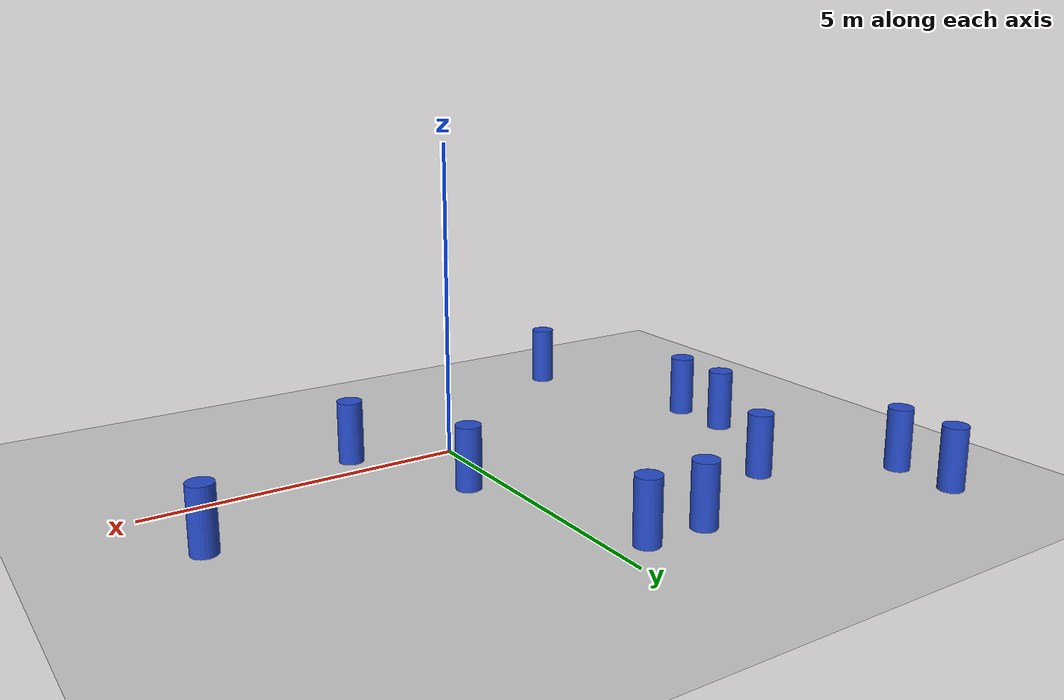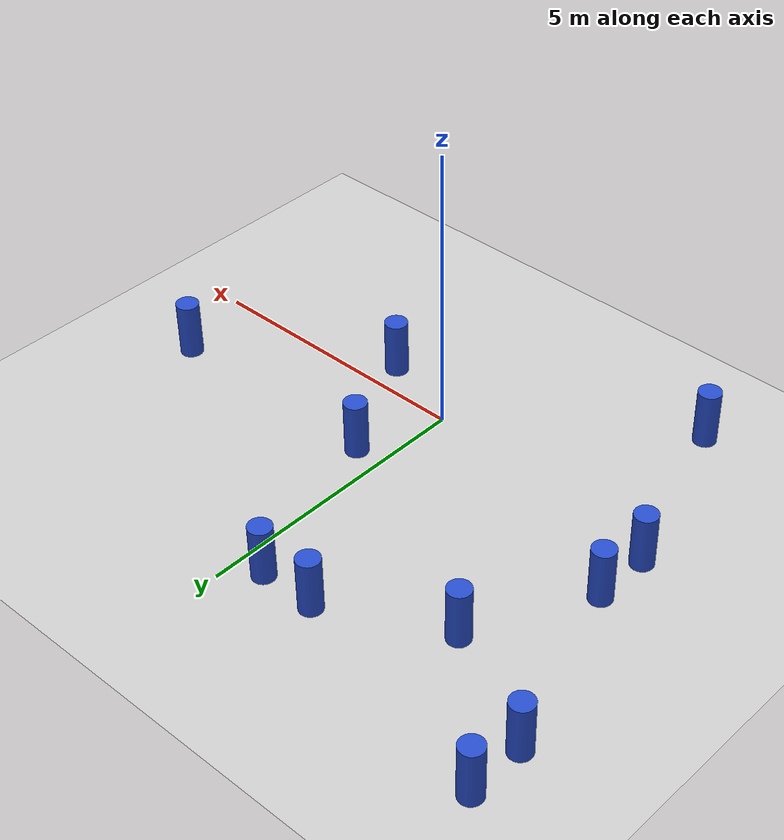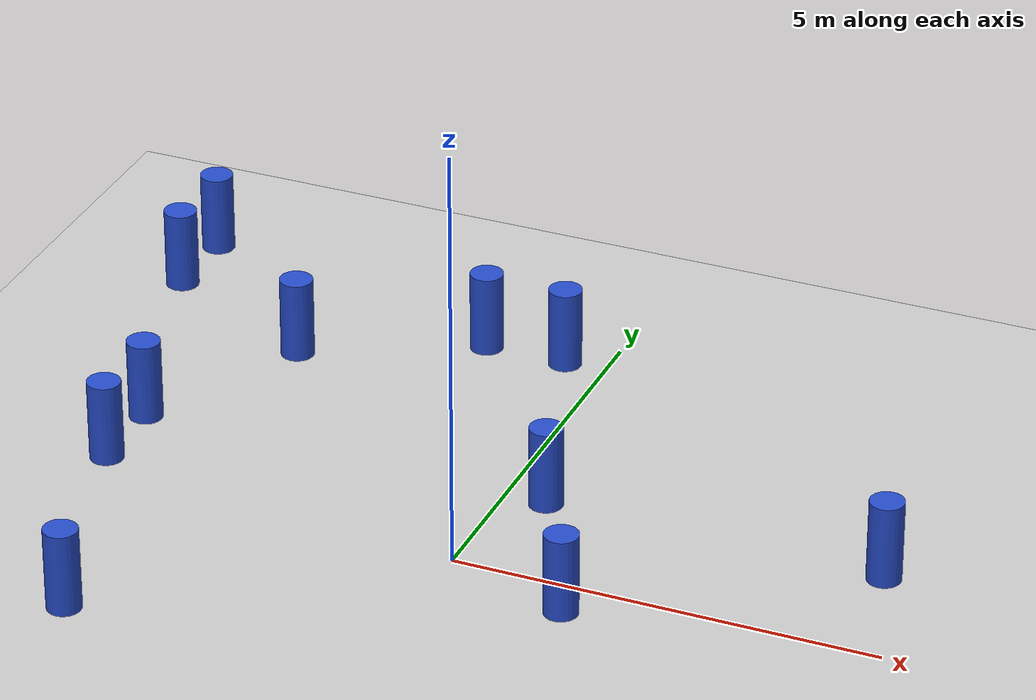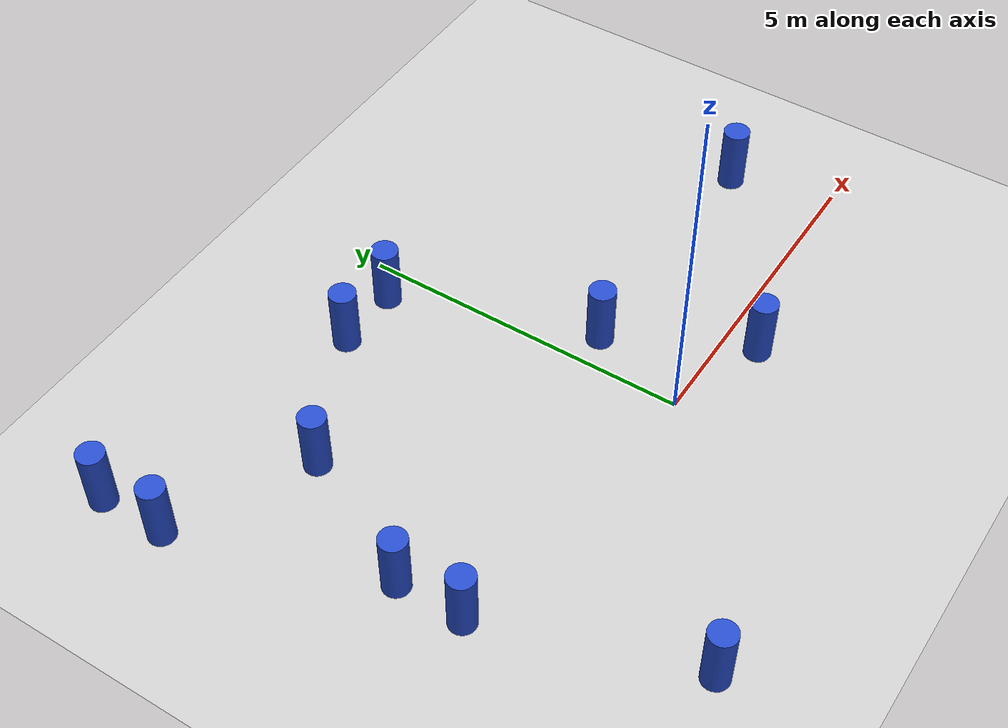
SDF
<sdf version="1.7">
 <world name="default">
  <model name="ground_plane">
   <static>1</static>
   <link name="link">
    <collision name="collision">
     <geometry><plane><normal>0 0 1</normal><size>100 100</size></plane></geometry>
     <surface>
      <contact><collide_bitmask>65535</collide_bitmask></contact>
      <friction><ode><mu>100</mu><mu2>50</mu2></ode></friction>
     </surface>
    </collision>
    <visual name="visual">
     <cast_shadows>0</cast_shadows>
     <geometry><plane><normal>0 0 1</normal><size>100 100</size></plane></geometry>
     <material>
      <script><uri>file://media/materials/scripts/gazebo.material</uri><name>Gazebo/Grey</name></script>
     </material>
    </visual>
   </link>
  </model>
  <model name="20x100cm_cylinder_clone_2">
   <link name="link">
    <inertial>
     <mass>1</mass>
     <inertia><ixx>0.145833</ixx><ixy>0</ixy><ixz>0</ixz><iyy>0.145833</iyy><iyz>0</iyz><izz>0.125</izz></inertia>
    </inertial>
    <visual name="visual">
     <geometry><cylinder><radius>0.2</radius><length>1</length></cylinder></geometry>
     <material>
      <script><name>Gazebo/Blue</name><uri>file://media/materials/scripts/gazebo.material</uri></script>
      <shader type="pixel"><normal_map>__default__</normal_map></shader>
      <ambient>0.3 0.3 0.3 1</ambient>
      <diffuse>0.7 0.7 0.7 1</diffuse>
      <specular>0.01 0.01 0.01 1</specular>
      <emissive>0 0 0 1</emissive>
     </material>
    </visual>
    <collision name="collision">
     <geometry><cylinder><radius>0.2</radius><length>1</length></cylinder></geometry>
     <surface>
      <friction>
       <ode><mu>1</mu><mu2>1</mu2><fdir1>0 0 0</fdir1><slip1>0</slip1><slip2>0</slip2></ode>
       <torsional>
        <coefficient>1</coefficient>
        <patch_radius>0</patch_radius>
        <surface_radius>0</surface_radius>
        <use_patch_radius>1</use_patch_radius>
        <ode><slip>0</slip></ode>
       </torsional>
      </friction>
      <bounce><restitution_coefficient>0</restitution_coefficient><threshold>1e+06</threshold></bounce>
      <contact>
       <collide_without_contact>0</collide_without_contact>
       <collide_without_contact_bitmask>1</collide_without_contact_bitmask>
       <collide_bitmask>1</collide_bitmask>
       <ode>
        <soft_cfm>0</soft_cfm>
        <soft_erp>0.2</soft_erp>
        <kp>1e+13</kp>
        <kd>1</kd>
        <max_vel>0.01</max_vel>
        <min_depth>0</min_depth>
       </ode>
       <bullet>
        <split_impulse>1</split_impulse>
        <split_impulse_penetration_threshold>-0.01</split_impulse_penetration_threshold>
        <soft_cfm>0</soft_cfm>
        <soft_erp>0.2</soft_erp>
        <kp>1e+13</kp>
        <kd>1</kd>
       </bullet>
      </contact>
     </surface>
    </collision>
   </link>
   <static>0</static>
   <pose>-4.49997 1.50001 0.499991 0 0 -7.7e-05</pose>
  </model>
  <model name="20x100cm_cylinder_clone_3">
   <link name="link">
    <inertial>
     <mass>1</mass>
     <inertia><ixx>0.145833</ixx><ixy>0</ixy><ixz>0</ixz><iyy>0.145833</iyy><iyz>0</iyz><izz>0.125</izz></inertia>
    </inertial>
    <visual name="visual">
     <geometry><cylinder><radius>0.2</radius><length>1</length></cylinder></geometry>
     <material>
      <script><name>Gazebo/Blue</name><uri>file://media/materials/scripts/gazebo.material</uri></script>
      <shader type="pixel"><normal_map>__default__</normal_map></shader>
      <ambient>0.3 0.3 0.3 1</ambient>
      <diffuse>0.7 0.7 0.7 1</diffuse>
      <specular>0.01 0.01 0.01 1</specular>
      <emissive>0 0 0 1</emissive>
     </material>
    </visual>
    <collision name="collision">
     <geometry><cylinder><radius>0.2</radius><length>1</length></cylinder></geometry>
     <surface>
      <friction>
       <ode><mu>1</mu><mu2>1</mu2><fdir1>0 0 0</fdir1><slip1>0</slip1><slip2>0</slip2></ode>
       <torsional>
        <coefficient>1</coefficient>
        <patch_radius>0</patch_radius>
        <surface_radius>0</surface_radius>
        <use_patch_radius>1</use_patch_radius>
        <ode><slip>0</slip></ode>
       </torsional>
      </friction>
      <bounce><restitution_coefficient>0</restitution_coefficient><threshold>1e+06</threshold></bounce>
      <contact>
       <collide_without_contact>0</collide_without_contact>
       <collide_without_contact_bitmask>1</collide_without_contact_bitmask>
       <collide_bitmask>1</collide_bitmask>
       <ode>
        <soft_cfm>0</soft_cfm>
        <soft_erp>0.2</soft_erp>
        <kp>1e+13</kp>
        <kd>1</kd>
        <max_vel>0.01</max_vel>
        <min_depth>0</min_depth>
       </ode>
       <bullet>
        <split_impulse>1</split_impulse>
        <split_impulse_penetration_threshold>-0.01</split_impulse_penetration_threshold>
        <soft_cfm>0</soft_cfm>
        <soft_erp>0.2</soft_erp>
        <kp>1e+13</kp>
        <kd>1</kd>
       </bullet>
      </contact>
     </surface>
    </collision>
   </link>
   <static>0</static>
   <pose>-1.49997 4.50001 0.499991 0 0 -7.7e-05</pose>
  </model>
  <model name="20x100cm_cylinder_clone_4">
   <link name="link">
    <inertial>
     <mass>1</mass>
     <inertia><ixx>0.145833</ixx><ixy>0</ixy><ixz>0</ixz><iyy>0.145833</iyy><iyz>0</iyz><izz>0.125</izz></inertia>
    </inertial>
    <visual name="visual">
     <geometry><cylinder><radius>0.2</radius><length>1</length></cylinder></geometry>
     <material>
      <script><name>Gazebo/Blue</name><uri>file://media/materials/scripts/gazebo.material</uri></script>
      <shader type="pixel"><normal_map>__default__</normal_map></shader>
      <ambient>0.3 0.3 0.3 1</ambient>
      <diffuse>0.7 0.7 0.7 1</diffuse>
      <specular>0.01 0.01 0.01 1</specular>
      <emissive>0 0 0 1</emissive>
     </material>
    </visual>
    <collision name="collision">
     <geometry><cylinder><radius>0.2</radius><length>1</length></cylinder></geometry>
     <surface>
      <friction>
       <ode><mu>1</mu><mu2>1</mu2><fdir1>0 0 0</fdir1><slip1>0</slip1><slip2>0</slip2></ode>
       <torsional>
        <coefficient>1</coefficient>
        <patch_radius>0</patch_radius>
        <surface_radius>0</surface_radius>
        <use_patch_radius>1</use_patch_radius>
        <ode><slip>0</slip></ode>
       </torsional>
      </friction>
      <bounce><restitution_coefficient>0</restitution_coefficient><threshold>1e+06</threshold></bounce>
      <contact>
       <collide_without_contact>0</collide_without_contact>
       <collide_without_contact_bitmask>1</collide_without_contact_bitmask>
       <collide_bitmask>1</collide_bitmask>
       <ode>
        <soft_cfm>0</soft_cfm>
        <soft_erp>0.2</soft_erp>
        <kp>1e+13</kp>
        <kd>1</kd>
        <max_vel>0.01</max_vel>
        <min_depth>0</min_depth>
       </ode>
       <bullet>
        <split_impulse>1</split_impulse>
        <split_impulse_penetration_threshold>-0.01</split_impulse_penetration_threshold>
        <soft_cfm>0</soft_cfm>
        <soft_erp>0.2</soft_erp>
        <kp>1e+13</kp>
        <kd>1</kd>
       </bullet>
      </contact>
     </surface>
    </collision>
   </link>
   <static>0</static>
   <pose>-5.49997 5.50001 0.499991 0 0 -7.7e-05</pose>
  </model>
  <model name="20x100cm_cylinder_clone_5">
   <link name="link">
    <inertial>
     <mass>1</mass>
     <inertia><ixx>0.145833</ixx><ixy>0</ixy><ixz>0</ixz><iyy>0.145833</iyy><iyz>0</iyz><izz>0.125</izz></inertia>
    </inertial>
    <visual name="visual">
     <geometry><cylinder><radius>0.2</radius><length>1</length></cylinder></geometry>
     <material>
      <script><name>Gazebo/Blue</name><uri>file://media/materials/scripts/gazebo.material</uri></script>
      <shader type="pixel"><normal_map>__default__</normal_map></shader>
      <ambient>0.3 0.3 0.3 1</ambient>
      <diffuse>0.7 0.7 0.7 1</diffuse>
      <specular>0.01 0.01 0.01 1</specular>
      <emissive>0 0 0 1</emissive>
     </material>
    </visual>
    <collision name="collision">
     <geometry><cylinder><radius>0.2</radius><length>1</length></cylinder></geometry>
     <surface>
      <friction>
       <ode><mu>1</mu><mu2>1</mu2><fdir1>0 0 0</fdir1><slip1>0</slip1><slip2>0</slip2></ode>
       <torsional>
        <coefficient>1</coefficient>
        <patch_radius>0</patch_radius>
        <surface_radius>0</surface_radius>
        <use_patch_radius>1</use_patch_radius>
        <ode><slip>0</slip></ode>
       </torsional>
      </friction>
      <bounce><restitution_coefficient>0</restitution_coefficient><threshold>1e+06</threshold></bounce>
      <contact>
       <collide_without_contact>0</collide_without_contact>
       <collide_without_contact_bitmask>1</collide_without_contact_bitmask>
       <collide_bitmask>1</collide_bitmask>
       <ode>
        <soft_cfm>0</soft_cfm>
        <soft_erp>0.2</soft_erp>
        <kp>1e+13</kp>
        <kd>1</kd>
        <max_vel>0.01</max_vel>
        <min_depth>0</min_depth>
       </ode>
       <bullet>
        <split_impulse>1</split_impulse>
        <split_impulse_penetration_threshold>-0.01</split_impulse_penetration_threshold>
        <soft_cfm>0</soft_cfm>
        <soft_erp>0.2</soft_erp>
        <kp>1e+13</kp>
        <kd>1</kd>
       </bullet>
      </contact>
     </surface>
    </collision>
   </link>
   <static>0</static>
   <pose>4.50003 1.50001 0.499991 0 0 -7.7e-05</pose>
  </model>
  <model name="20x100cm_cylinder_clone_6">
   <link name="link">
    <inertial>
     <mass>1</mass>
     <inertia><ixx>0.145833</ixx><ixy>0</ixy><ixz>0</ixz><iyy>0.145833</iyy><iyz>0</iyz><izz>0.125</izz></inertia>
    </inertial>
    <visual name="visual">
     <geometry><cylinder><radius>0.2</radius><length>1</length></cylinder></geometry>
     <material>
      <script><name>Gazebo/Blue</name><uri>file://media/materials/scripts/gazebo.material</uri></script>
      <shader type="pixel"><normal_map>__default__</normal_map></shader>
      <ambient>0.3 0.3 0.3 1</ambient>
      <diffuse>0.7 0.7 0.7 1</diffuse>
      <specular>0.01 0.01 0.01 1</specular>
      <emissive>0 0 0 1</emissive>
     </material>
    </visual>
    <collision name="collision">
     <geometry><cylinder><radius>0.2</radius><length>1</length></cylinder></geometry>
     <surface>
      <friction>
       <ode><mu>1</mu><mu2>1</mu2><fdir1>0 0 0</fdir1><slip1>0</slip1><slip2>0</slip2></ode>
       <torsional>
        <coefficient>1</coefficient>
        <patch_radius>0</patch_radius>
        <surface_radius>0</surface_radius>
        <use_patch_radius>1</use_patch_radius>
        <ode><slip>0</slip></ode>
       </torsional>
      </friction>
      <bounce><restitution_coefficient>0</restitution_coefficient><threshold>1e+06</threshold></bounce>
      <contact>
       <collide_without_contact>0</collide_without_contact>
       <collide_without_contact_bitmask>1</collide_without_contact_bitmask>
       <collide_bitmask>1</collide_bitmask>
       <ode>
        <soft_cfm>0</soft_cfm>
        <soft_erp>0.2</soft_erp>
        <kp>1e+13</kp>
        <kd>1</kd>
        <max_vel>0.01</max_vel>
        <min_depth>0</min_depth>
       </ode>
       <bullet>
        <split_impulse>1</split_impulse>
        <split_impulse_penetration_threshold>-0.01</split_impulse_penetration_threshold>
        <soft_cfm>0</soft_cfm>
        <soft_erp>0.2</soft_erp>
        <kp>1e+13</kp>
        <kd>1</kd>
       </bullet>
      </contact>
     </surface>
    </collision>
   </link>
   <static>0</static>
   <pose>-0.499974 4.50001 0.499991 0 0 -7.7e-05</pose>
  </model>
  <model name="20x100cm_cylinder_clone_12">
   <link name="link">
    <inertial>
     <mass>1</mass>
     <inertia><ixx>0.145833</ixx><ixy>0</ixy><ixz>0</ixz><iyy>0.145833</iyy><iyz>0</iyz><izz>0.125</izz></inertia>
    </inertial>
    <visual name="visual">
     <geometry><cylinder><radius>0.2</radius><length>1</length></cylinder></geometry>
     <material>
      <script><name>Gazebo/Blue</name><uri>file://media/materials/scripts/gazebo.material</uri></script>
      <shader type="pixel"><normal_map>__default__</normal_map></shader>
      <ambient>0.3 0.3 0.3 1</ambient>
      <diffuse>0.7 0.7 0.7 1</diffuse>
      <specular>0.01 0.01 0.01 1</specular>
      <emissive>0 0 0 1</emissive>
     </material>
    </visual>
    <collision name="collision">
     <geometry><cylinder><radius>0.2</radius><length>1</length></cylinder></geometry>
     <surface>
      <friction>
       <ode><mu>1</mu><mu2>1</mu2><fdir1>0 0 0</fdir1><slip1>0</slip1><slip2>0</slip2></ode>
       <torsional>
        <coefficient>1</coefficient>
        <patch_radius>0</patch_radius>
        <surface_radius>0</surface_radius>
        <use_patch_radius>1</use_patch_radius>
        <ode><slip>0</slip></ode>
       </torsional>
      </friction>
      <bounce><restitution_coefficient>0</restitution_coefficient><threshold>1e+06</threshold></bounce>
      <contact>
       <collide_without_contact>0</collide_without_contact>
       <collide_without_contact_bitmask>1</collide_without_contact_bitmask>
       <collide_bitmask>1</collide_bitmask>
       <ode>
        <soft_cfm>0</soft_cfm>
        <soft_erp>0.2</soft_erp>
        <kp>1e+13</kp>
        <kd>1</kd>
        <max_vel>0.01</max_vel>
        <min_depth>0</min_depth>
       </ode>
       <bullet>
        <split_impulse>1</split_impulse>
        <split_impulse_penetration_threshold>-0.01</split_impulse_penetration_threshold>
        <soft_cfm>0</soft_cfm>
        <soft_erp>0.2</soft_erp>
        <kp>1e+13</kp>
        <kd>1</kd>
       </bullet>
      </contact>
     </surface>
    </collision>
   </link>
   <static>0</static>
   <pose>-5.49997 4.50001 0.499991 0 0 -7.7e-05</pose>
  </model>
  <model name="20x100cm_cylinder_clone_13">
   <link name="link">
    <inertial>
     <mass>1</mass>
     <inertia><ixx>0.145833</ixx><ixy>0</ixy><ixz>0</ixz><iyy>0.145833</iyy><iyz>0</iyz><izz>0.125</izz></inertia>
    </inertial>
    <visual name="visual">
     <geometry><cylinder><radius>0.2</radius><length>1</length></cylinder></geometry>
     <material>
      <script><name>Gazebo/Blue</name><uri>file://media/materials/scripts/gazebo.material</uri></script>
      <shader type="pixel"><normal_map>__default__</normal_map></shader>
      <ambient>0.3 0.3 0.3 1</ambient>
      <diffuse>0.7 0.7 0.7 1</diffuse>
      <specular>0.01 0.01 0.01 1</specular>
      <emissive>0 0 0 1</emissive>
     </material>
    </visual>
    <collision name="collision">
     <geometry><cylinder><radius>0.2</radius><length>1</length></cylinder></geometry>
     <surface>
      <friction>
       <ode><mu>1</mu><mu2>1</mu2><fdir1>0 0 0</fdir1><slip1>0</slip1><slip2>0</slip2></ode>
       <torsional>
        <coefficient>1</coefficient>
        <patch_radius>0</patch_radius>
        <surface_radius>0</surface_radius>
        <use_patch_radius>1</use_patch_radius>
        <ode><slip>0</slip></ode>
       </torsional>
      </friction>
      <bounce><restitution_coefficient>0</restitution_coefficient><threshold>1e+06</threshold></bounce>
      <contact>
       <collide_without_contact>0</collide_without_contact>
       <collide_without_contact_bitmask>1</collide_without_contact_bitmask>
       <collide_bitmask>1</collide_bitmask>
       <ode>
        <soft_cfm>0</soft_cfm>
        <soft_erp>0.2</soft_erp>
        <kp>1e+13</kp>
        <kd>1</kd>
        <max_vel>0.01</max_vel>
        <min_depth>0</min_depth>
       </ode>
       <bullet>
        <split_impulse>1</split_impulse>
        <split_impulse_penetration_threshold>-0.01</split_impulse_penetration_threshold>
        <soft_cfm>0</soft_cfm>
        <soft_erp>0.2</soft_erp>
        <kp>1e+13</kp>
        <kd>1</kd>
       </bullet>
      </contact>
     </surface>
    </collision>
   </link>
   <static>0</static>
   <pose>0.500026 1.50001 0.499991 0 0 -7.7e-05</pose>
  </model>
  <model name="20x100cm_cylinder_clone_15">
   <link name="link">
    <inertial>
     <mass>1</mass>
     <inertia><ixx>0.145833</ixx><ixy>0</ixy><ixz>0</ixz><iyy>0.145833</iyy><iyz>0</iyz><izz>0.125</izz></inertia>
    </inertial>
    <visual name="visual">
     <geometry><cylinder><radius>0.2</radius><length>1</length></cylinder></geometry>
     <material>
      <script><name>Gazebo/Blue</name><uri>file://media/materials/scripts/gazebo.material</uri></script>
      <shader type="pixel"><normal_map>__default__</normal_map></shader>
      <ambient>0.3 0.3 0.3 1</ambient>
      <diffuse>0.7 0.7 0.7 1</diffuse>
      <specular>0.01 0.01 0.01 1</specular>
      <emissive>0 0 0 1</emissive>
     </material>
    </visual>
    <collision name="collision">
     <geometry><cylinder><radius>0.2</radius><length>1</length></cylinder></geometry>
     <surface>
      <friction>
       <ode><mu>1</mu><mu2>1</mu2><fdir1>0 0 0</fdir1><slip1>0</slip1><slip2>0</slip2></ode>
       <torsional>
        <coefficient>1</coefficient>
        <patch_radius>0</patch_radius>
        <surface_radius>0</surface_radius>
        <use_patch_radius>1</use_patch_radius>
        <ode><slip>0</slip></ode>
       </torsional>
      </friction>
      <bounce><restitution_coefficient>0</restitution_coefficient><threshold>1e+06</threshold></bounce>
      <contact>
       <collide_without_contact>0</collide_without_contact>
       <collide_without_contact_bitmask>1</collide_without_contact_bitmask>
       <collide_bitmask>1</collide_bitmask>
       <ode>
        <soft_cfm>0</soft_cfm>
        <soft_erp>0.2</soft_erp>
        <kp>1e+13</kp>
        <kd>1</kd>
        <max_vel>0.01</max_vel>
        <min_depth>0</min_depth>
       </ode>
       <bullet>
        <split_impulse>1</split_impulse>
        <split_impulse_penetration_threshold>-0.01</split_impulse_penetration_threshold>
        <soft_cfm>0</soft_cfm>
        <soft_erp>0.2</soft_erp>
        <kp>1e+13</kp>
        <kd>1</kd>
       </bullet>
      </contact>
     </surface>
    </collision>
   </link>
   <static>0</static>
   <pose>-3.49997 -2.49999 0.499991 0 0 -7.7e-05</pose>
  </model>
  <model name="20x100cm_cylinder_clone_16">
   <link name="link">
    <inertial>
     <mass>1</mass>
     <inertia><ixx>0.145833</ixx><ixy>0</ixy><ixz>0</ixz><iyy>0.145833</iyy><iyz>0</iyz><izz>0.125</izz></inertia>
    </inertial>
    <visual name="visual">
     <geometry><cylinder><radius>0.2</radius><length>1</length></cylinder></geometry>
     <material>
      <script><name>Gazebo/Blue</name><uri>file://media/materials/scripts/gazebo.material</uri></script>
      <shader type="pixel"><normal_map>__default__</normal_map></shader>
      <ambient>0.3 0.3 0.3 1</ambient>
      <diffuse>0.7 0.7 0.7 1</diffuse>
      <specular>0.01 0.01 0.01 1</specular>
      <emissive>0 0 0 1</emissive>
     </material>
    </visual>
    <collision name="collision">
     <geometry><cylinder><radius>0.2</radius><length>1</length></cylinder></geometry>
     <surface>
      <friction>
       <ode><mu>1</mu><mu2>1</mu2><fdir1>0 0 0</fdir1><slip1>0</slip1><slip2>0</slip2></ode>
       <torsional>
        <coefficient>1</coefficient>
        <patch_radius>0</patch_radius>
        <surface_radius>0</surface_radius>
        <use_patch_radius>1</use_patch_radius>
        <ode><slip>0</slip></ode>
       </torsional>
      </friction>
      <bounce><restitution_coefficient>0</restitution_coefficient><threshold>1e+06</threshold></bounce>
      <contact>
       <collide_without_contact>0</collide_without_contact>
       <collide_without_contact_bitmask>1</collide_without_contact_bitmask>
       <collide_bitmask>1</collide_bitmask>
       <ode>
        <soft_cfm>0</soft_cfm>
        <soft_erp>0.2</soft_erp>
        <kp>1e+13</kp>
        <kd>1</kd>
        <max_vel>0.01</max_vel>
        <min_depth>0</min_depth>
       </ode>
       <bullet>
        <split_impulse>1</split_impulse>
        <split_impulse_penetration_threshold>-0.01</split_impulse_penetration_threshold>
        <soft_cfm>0</soft_cfm>
        <soft_erp>0.2</soft_erp>
        <kp>1e+13</kp>
        <kd>1</kd>
       </bullet>
      </contact>
     </surface>
    </collision>
   </link>
   <static>0</static>
   <pose>-3.49997 3.50001 0.499991 0 0 -7.7e-05</pose>
  </model>
  <model name="20x100cm_cylinder_clone_17">
   <link name="link">
    <inertial>
     <mass>1</mass>
     <inertia><ixx>0.145833</ixx><ixy>0</ixy><ixz>0</ixz><iyy>0.145833</iyy><iyz>0</iyz><izz>0.125</izz></inertia>
    </inertial>
    <visual name="visual">
     <geometry><cylinder><radius>0.2</radius><length>1</length></cylinder></geometry>
     <material>
      <script><name>Gazebo/Blue</name><uri>file://media/materials/scripts/gazebo.material</uri></script>
      <shader type="pixel"><normal_map>__default__</normal_map></shader>
      <ambient>0.3 0.3 0.3 1</ambient>
      <diffuse>0.7 0.7 0.7 1</diffuse>
      <specular>0.01 0.01 0.01 1</specular>
      <emissive>0 0 0 1</emissive>
     </material>
    </visual>
    <collision name="collision">
     <geometry><cylinder><radius>0.2</radius><length>1</length></cylinder></geometry>
     <surface>
      <friction>
       <ode><mu>1</mu><mu2>1</mu2><fdir1>0 0 0</fdir1><slip1>0</slip1><slip2>0</slip2></ode>
       <torsional>
        <coefficient>1</coefficient>
        <patch_radius>0</patch_radius>
        <surface_radius>0</surface_radius>
        <use_patch_radius>1</use_patch_radius>
        <ode><slip>0</slip></ode>
       </torsional>
      </friction>
      <bounce><restitution_coefficient>0</restitution_coefficient><threshold>1e+06</threshold></bounce>
      <contact>
       <collide_without_contact>0</collide_without_contact>
       <collide_without_contact_bitmask>1</collide_without_contact_bitmask>
       <collide_bitmask>1</collide_bitmask>
       <ode>
        <soft_cfm>0</soft_cfm>
        <soft_erp>0.2</soft_erp>
        <kp>1e+13</kp>
        <kd>1</kd>
        <max_vel>0.01</max_vel>
        <min_depth>0</min_depth>
       </ode>
       <bullet>
        <split_impulse>1</split_impulse>
        <split_impulse_penetration_threshold>-0.01</split_impulse_penetration_threshold>
        <soft_cfm>0</soft_cfm>
        <soft_erp>0.2</soft_erp>
        <kp>1e+13</kp>
        <kd>1</kd>
       </bullet>
      </contact>
     </surface>
    </collision>
   </link>
   <static>0</static>
   <pose>-4.49997 0.500013 0.499991 0 0 -7.7e-05</pose>
  </model>
  <model name="20x100cm_cylinder_clone_19">
   <link name="link">
    <inertial>
     <mass>1</mass>
     <inertia><ixx>0.145833</ixx><ixy>0</ixy><ixz>0</ixz><iyy>0.145833</iyy><iyz>0</iyz><izz>0.125</izz></inertia>
    </inertial>
    <visual name="visual">
     <geometry><cylinder><radius>0.2</radius><length>1</length></cylinder></geometry>
     <material>
      <script><name>Gazebo/Blue</name><uri>file://media/materials/scripts/gazebo.material</uri></script>
      <shader type="pixel"><normal_map>__default__</normal_map></shader>
      <ambient>0.3 0.3 0.3 1</ambient>
      <diffuse>0.7 0.7 0.7 1</diffuse>
      <specular>0.01 0.01 0.01 1</specular>
      <emissive>0 0 0 1</emissive>
     </material>
    </visual>
    <collision name="collision">
     <geometry><cylinder><radius>0.2</radius><length>1</length></cylinder></geometry>
     <surface>
      <friction>
       <ode><mu>1</mu><mu2>1</mu2><fdir1>0 0 0</fdir1><slip1>0</slip1><slip2>0</slip2></ode>
       <torsional>
        <coefficient>1</coefficient>
        <patch_radius>0</patch_radius>
        <surface_radius>0</surface_radius>
        <use_patch_radius>1</use_patch_radius>
        <ode><slip>0</slip></ode>
       </torsional>
      </friction>
      <bounce><restitution_coefficient>0</restitution_coefficient><threshold>1e+06</threshold></bounce>
      <contact>
       <collide_without_contact>0</collide_without_contact>
       <collide_without_contact_bitmask>1</collide_without_contact_bitmask>
       <collide_bitmask>1</collide_bitmask>
       <ode>
        <soft_cfm>0</soft_cfm>
        <soft_erp>0.2</soft_erp>
        <kp>1e+13</kp>
        <kd>1</kd>
        <max_vel>0.01</max_vel>
        <min_depth>0</min_depth>
       </ode>
       <bullet>
        <split_impulse>1</split_impulse>
        <split_impulse_penetration_threshold>-0.01</split_impulse_penetration_threshold>
        <soft_cfm>0</soft_cfm>
        <soft_erp>0.2</soft_erp>
        <kp>1e+13</kp>
        <kd>1</kd>
       </bullet>
      </contact>
     </surface>
    </collision>
   </link>
   <static>0</static>
   <pose>1.50003 -0.499987 0.499991 0 0 -7.7e-05</pose>
  </model>
 </world>
</sdf>
